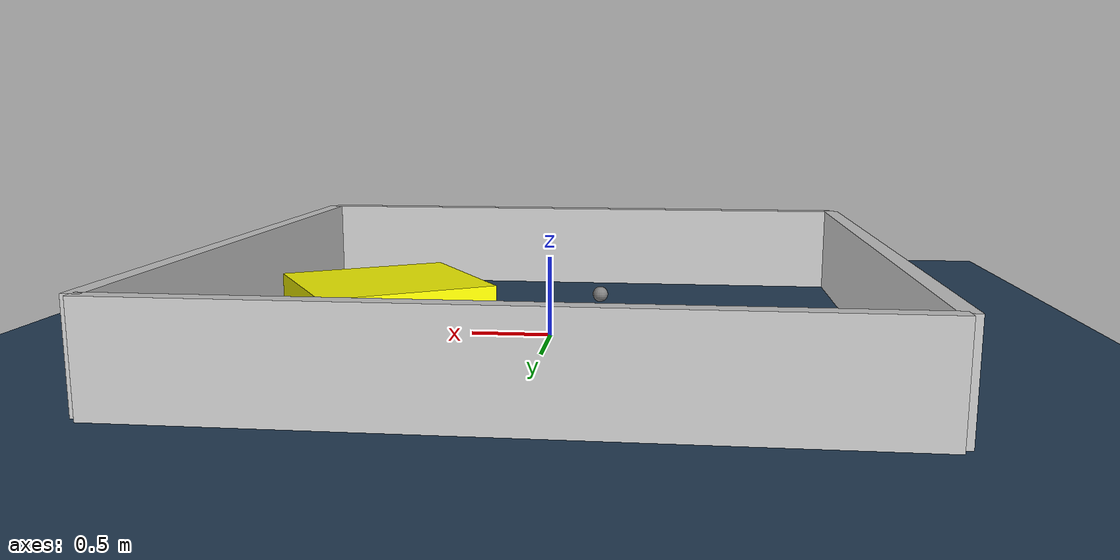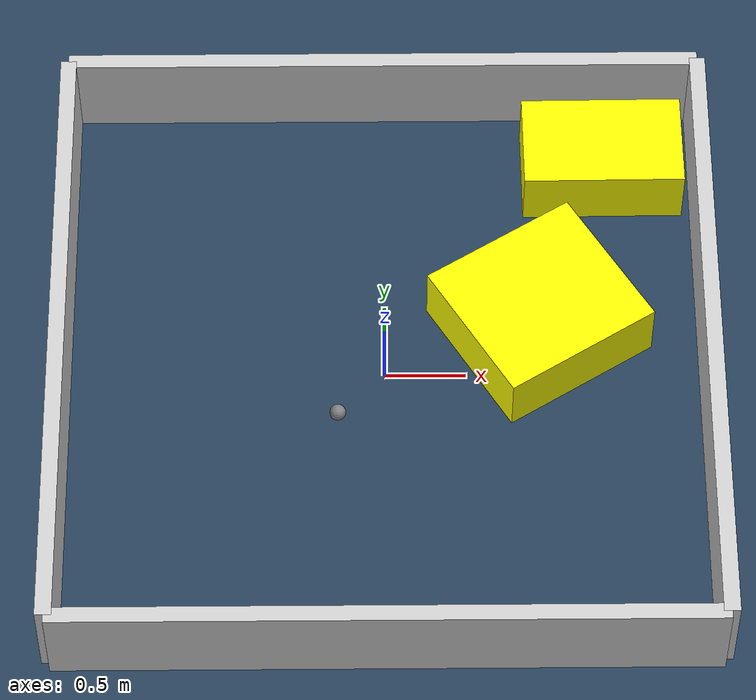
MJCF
<?xml version="1.0" ?>
<mujoco model="generated_environment">
  <option timestep="0.01" integrator="RK4" cone="elliptic"/>
  <default>
    <geom density="1"/>
  </default>
  <asset>
    <texture builtin="gradient" height="3072" rgb1="0.3 0.5 0.7" rgb2="0 0 0" type="skybox" width="512"/>
    <texture builtin="checker" height="300" mark="edge" markrgb="0.8 0.8 0.8" name="groundplane" rgb1="0.2 0.3 0.4" rgb2="0.1 0.2 0.3" type="2d" width="300"/>
    <material name="groundplane" reflectance="0.2" texrepeat="5 5" texture="groundplane" texuniform="true"/>
    <material name="robot" rgba="0.0 1.0 0.0 1"/>
  </asset>
  <worldbody>
    <light dir="0 0 -1" directional="true" pos="0 0 1.5"/>
    <geom condim="4" friction="1.0 0.005 0.001" material="groundplane" name="floor" size="0 0 0.05" type="plane"/>
    <body name="walls">
      <geom name="wall_1" condim="4" pos="-2.0 0.0 0.3" rgba="0.800000011920929 0.800000011920929 0.800000011920929 1.0" size="0.05 2.0 0.3" type="box"/>
      <geom name="wall_2" condim="4" pos="2.0 0.0 0.3" rgba="0.800000011920929 0.800000011920929 0.800000011920929 1.0" size="0.05 2.0 0.3" type="box"/>
      <geom name="wall_3" condim="4" pos="0.0 -2.0 0.3" rgba="0.800000011920929 0.800000011920929 0.800000011920929 1.0" size="2.0 0.05 0.3" type="box"/>
      <geom name="wall_4" condim="4" pos="0.0 2.0 0.3" rgba="0.800000011920929 0.800000011920929 0.800000011920929 1.0" size="2.0 0.05 0.3" type="box"/>
    </body>
    <body name="robot">
      <joint name="joint_x" type="slide" pos="0 0 0" axis="1 0 0"/>
      <joint name="joint_y" type="slide" pos="0 0 0" axis="0 1 0"/>
      <geom name="robot" type="sphere" pos="-0.2922545066728224 -0.3880223331590178 0.2" size="0.05" mass="5." friction="1.0 0.005 0.0001" condim="4"/>
      <site name="sensor_ball"/>
    </body>
    <body name="obstacle_1_movable">
      <geom name="obstacle_1_movable" condim="4" pos="0.9630466397035273 0.33852524702220266 0.2" euler="0 0 211.83129155207345" friction="1.0 0.005 0.001" rgba="1 1 0 1" size="0.5207102696105497 0.4869681852287538 0.2" type="box" mass="0.1"/>
      <joint type="free"/>
    </body>
    <body name="obstacle_2_movable">
      <geom name="obstacle_2_movable" condim="4" pos="1.3902549551383605 1.5072548768800553 0.2" euler="0 0 90.48685940702961" friction="1.0 0.005 0.001" rgba="1 1 0 1" size="0.3134738525865957 0.5056081967888773 0.2" type="box" mass="0.1"/>
      <joint type="free"/>
    </body>
  </worldbody>
  <actuator>
    <motor name="actuator_x" joint="joint_x" gear="1" ctrlrange="-1 1"/>
    <motor name="actuator_y" joint="joint_y" gear="1" ctrlrange="-1 1"/>
  </actuator>
</mujoco>
